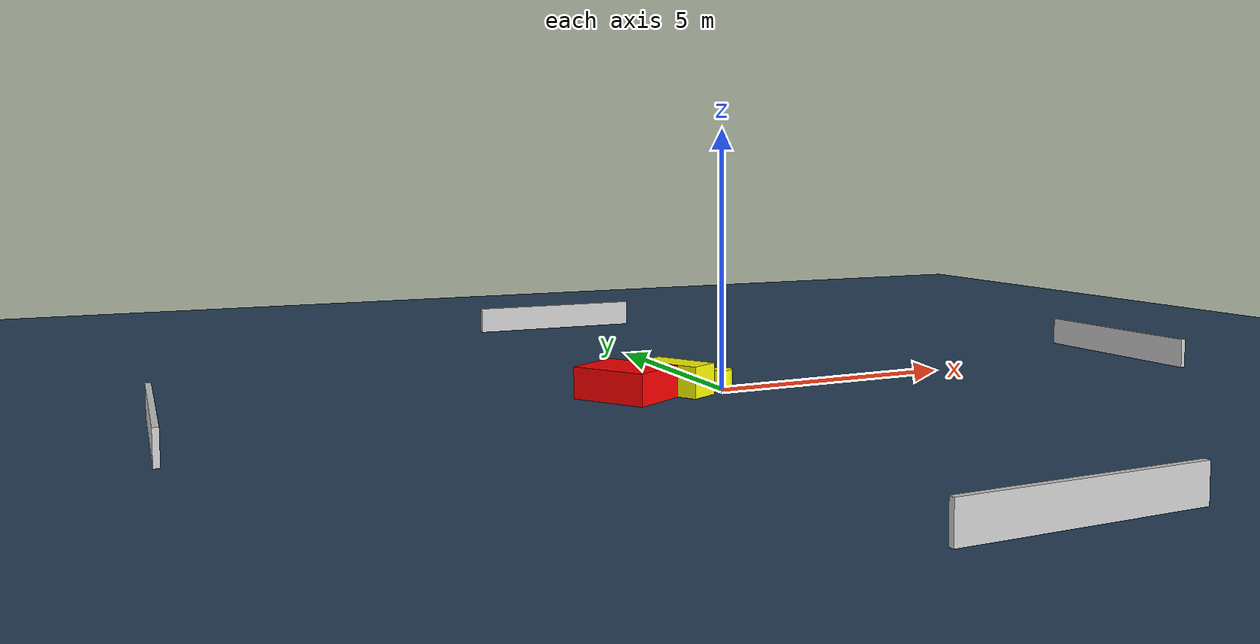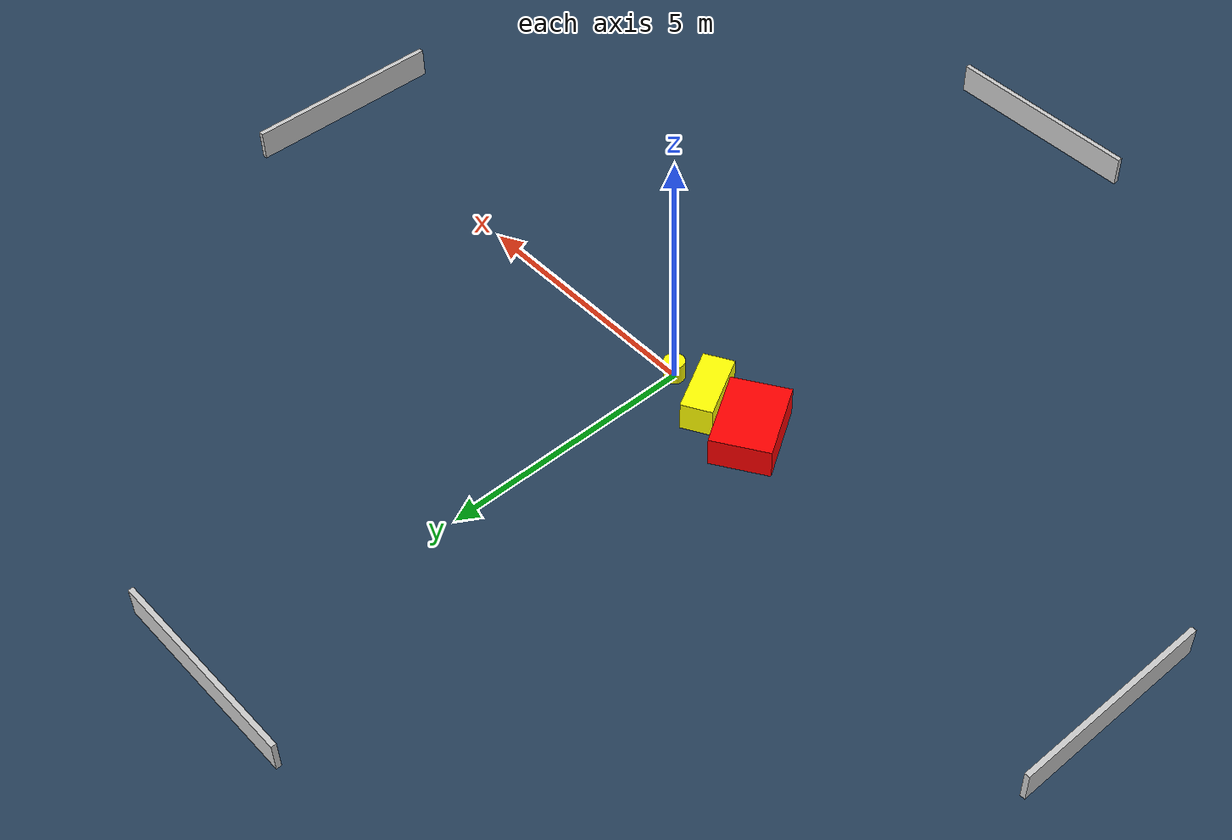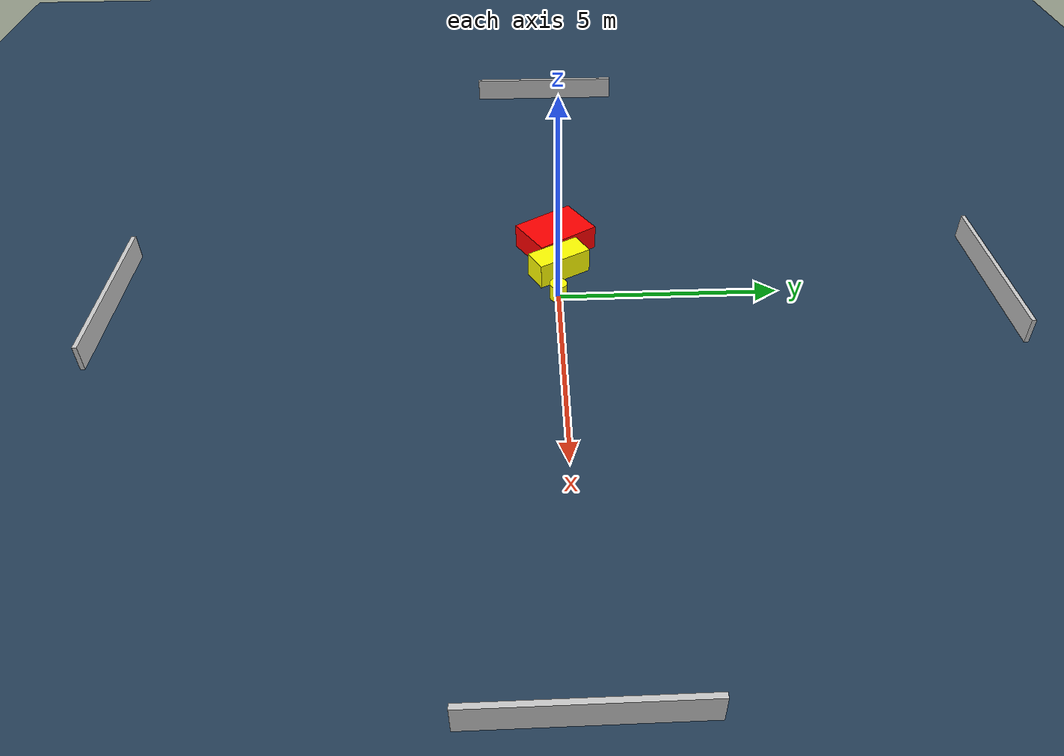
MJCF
<?xml version="1.0" ?>
<mujoco model="generated_environment">
  <option timestep="0.01" integrator="RK4" cone="elliptic"/>
  <default>
    <geom density="1"/>
  </default>
  <asset>
    <texture builtin="gradient" height="3072" name="skybox" rgb1="0.3 0.5 0.7" rgb2="0 0 0" type="skybox" width="512"/>
    <texture builtin="checker" height="300" name="groundplane" rgb1="0.2 0.3 0.4" rgb2="0.1 0.2 0.3" type="2d" width="300"/>
    <material name="groundplane" reflectance="0.2" texrepeat="5 5" texture="groundplane"/>
  </asset>
  <worldbody>
    <light dir="0 0 -1" directional="true" pos="0 0 1.5"/>
    <geom condim="3" friction="0.5 0.005 0.001" material="groundplane" name="floor" pos="0 0 0" size="0 0 0.05" type="plane"/>
    <body name="walls">
      <geom name="wall_1" condim="4" pos="-10.0 0.0 0.3" rgba="0.800000011920929 0.800000011920929 0.800000011920929 1.0" size="0.05 2.0 0.3" type="box"/>
      <geom name="wall_2" condim="4" pos="10.0 0.0 0.3" rgba="0.800000011920929 0.800000011920929 0.800000011920929 1.0" size="0.05 2.0 0.3" type="box"/>
      <geom name="wall_3" condim="4" pos="0.0 -10.0 0.3" rgba="0.800000011920929 0.800000011920929 0.800000011920929 1.0" size="2.0 0.05 0.3" type="box"/>
      <geom name="wall_4" condim="4" pos="0.0 10.0 0.3" rgba="0.800000011920929 0.800000011920929 0.800000011920929 1.0" size="2.0 0.05 0.3" type="box"/>
    </body>
    <body name="robot">
      <joint name="joint_x" type="slide" pos="0 0 0" axis="1 0 0"/>
      <joint name="joint_y" type="slide" pos="0 0 0" axis="0 1 0"/>
      <geom name="robot" type="cylinder" pos="0.0 0.0 0.2" size="0.2 0.2 0.0" mass="5.0" friction="1.0 0.005 0.0001" condim="4" rgba="1.0 1.0 0.0 1.0"/>
    </body>
    <body name="obstacle_1_movable">
      <geom name="obstacle_1_movable" condim="4" pos="-0.9313753094015335 0.050897758606803525 0.3" euler="0 0 119.09878249132908" friction="0.0 0.005 0.001" rgba="1.0 1.0 0.0 1.0" size="0.6555227440659523 0.30101302475485275 0.3" type="box" mass="0.1"/>
      <joint type="free"/>
    </body>
    <body name="obstacle_2_static">
      <geom name="obstacle_2_static" condim="4" pos="-1.9868972832778924 0.014871728650826798 0.3" euler="0 0 212.2083318502851" friction="0.0 0.005 0.001" rgba="1.0 0.0 0.0 1.0" size="0.5673481965493693 0.775844871818721 0.3" type="box"/>
    </body>
  </worldbody>
  <actuator>
    <motor name="actuator_x" joint="joint_x" gear="1" ctrlrange="-1 1"/>
    <motor name="actuator_y" joint="joint_y" gear="1" ctrlrange="-1 1"/>
  </actuator>
</mujoco>
